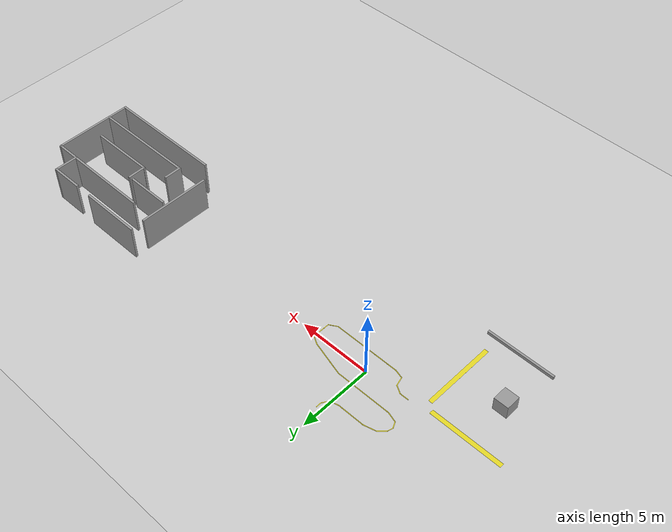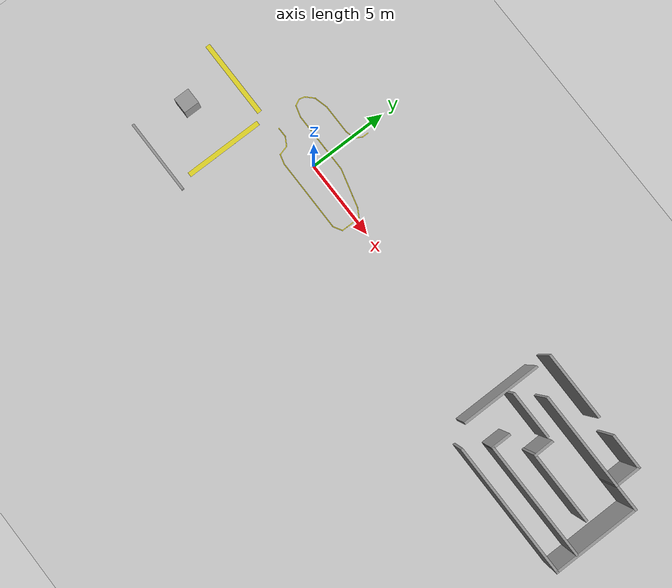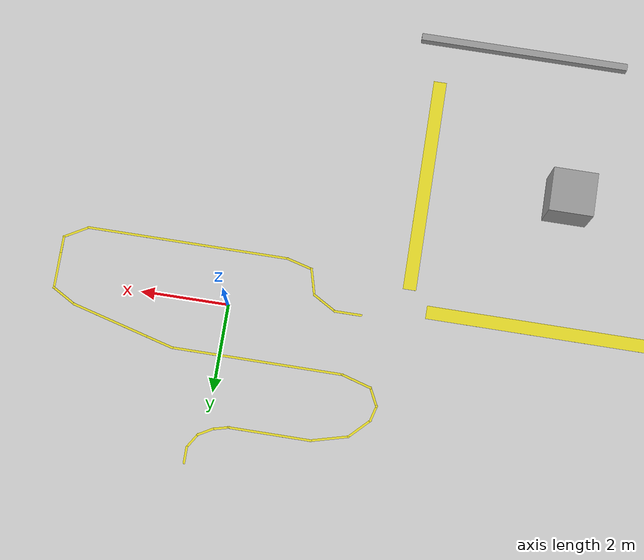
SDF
<sdf version="1.7">
 <world name="default">
  <light name="sun" type="directional">
   <pose>0 0 10 0 -0 0</pose>
   <diffuse>0.8 0.8 0.8 1</diffuse>
   <specular>0.2 0.2 0.2 1</specular>
   <attenuation>
    <range>1000</range>
    <constant>0.9</constant>
    <linear>0.01</linear>
    <quadratic>0.001</quadratic>
   </attenuation>
   <direction>-0.5 0.1 -0.9</direction>
   <spot><inner_angle>0</inner_angle><outer_angle>0</outer_angle><falloff>0</falloff></spot>
  </light>
  <include><uri>file:///home/giromi/model_editor_models/sideblock_path/model.sdf</uri></include>
  <model name="ground_plane">
   <static>1</static>
   <link name="link">
    <collision name="collision">
     <geometry><plane><normal>0 0 1</normal><size>100 100</size></plane></geometry>
     <surface>
      <contact><collide_bitmask>65535</collide_bitmask></contact>
      <friction><ode><mu>100</mu><mu2>50</mu2></ode></friction>
     </surface>
    </collision>
    <visual name="visual">
     <cast_shadows>0</cast_shadows>
     <geometry><plane><normal>0 0 1</normal><size>100 100</size></plane></geometry>
     <material>
      <script><uri>file://media/materials/scripts/gazebo.material</uri><name>Gazebo/Grey</name></script>
     </material>
    </visual>
   </link>
  </model>
  <gravity>0 0 -9.8</gravity>
  <magnetic_field>6e-06 2.3e-05 -4.2e-05</magnetic_field>
  <atmosphere type="adiabatic"/>
  <physics type="ode">
   <max_step_size>0.001</max_step_size>
   <real_time_factor>1</real_time_factor>
   <real_time_update_rate>1000</real_time_update_rate>
  </physics>
  <scene><ambient>0.4 0.4 0.4 1</ambient><background>0.7 0.7 0.7 1</background><shadows>1</shadows></scene>
  <spherical_coordinates>
   <surface_model>EARTH_WGS84</surface_model>
   <latitude_deg>0</latitude_deg>
   <longitude_deg>0</longitude_deg>
   <elevation>0</elevation>
   <heading_deg>0</heading_deg>
  </spherical_coordinates>
  <model name="maze">
   <pose>21 0 0 0 -0 0</pose>
   <link name="Wall_1">
    <collision name="Wall_1_Collision">
     <geometry><box><size>8.25 0.15 2.5</size></box></geometry>
     <pose>0 0 1.25 0 -0 0</pose>
    </collision>
    <visual name="Wall_1_Visual">
     <pose>0 0 1.25 0 -0 0</pose>
     <geometry><box><size>8.25 0.15 2.5</size></box></geometry>
     <material>
      <script><uri>file://media/materials/scripts/gazebo.material</uri><name>Gazebo/Grey</name></script>
      <ambient>1 1 1 1</ambient>
     </material>
     <meta><layer>0</layer></meta>
    </visual>
    <pose>0.515408 -3.4419 0 0 -0 0</pose>
   </link>
   <link name="Wall_2">
    <collision name="Wall_2_Collision">
     <geometry><box><size>5.5 0.15 2.5</size></box></geometry>
     <pose>0 0 1.25 0 -0 0</pose>
    </collision>
    <visual name="Wall_2_Visual">
     <pose>0 0 1.25 0 -0 0</pose>
     <geometry><box><size>5.5 0.15 2.5</size></box></geometry>
     <material>
      <script><uri>file://media/materials/scripts/gazebo.material</uri><name>Gazebo/Grey</name></script>
      <ambient>1 1 1 1</ambient>
     </material>
     <meta><layer>0</layer></meta>
    </visual>
    <pose>4.56541 -0.766899 0 0 -0 1.5708</pose>
   </link>
   <link name="Wall_3">
    <collision name="Wall_3_Collision">
     <geometry><box><size>1.75 0.15 2.5</size></box></geometry>
     <pose>0 0 1.25 0 -0 0</pose>
    </collision>
    <visual name="Wall_3_Visual">
     <pose>0 0 1.25 0 -0 0</pose>
     <geometry><box><size>1.75 0.15 2.5</size></box></geometry>
     <material>
      <script><uri>file://media/materials/scripts/gazebo.material</uri><name>Gazebo/Grey</name></script>
      <ambient>1 1 1 1</ambient>
     </material>
     <meta><layer>0</layer></meta>
    </visual>
    <pose>3.76541 1.9081 0 0 -0 3.14159</pose>
   </link>
   <link name="Wall_4">
    <collision name="Wall_4_Collision">
     <geometry><box><size>1.6825 0.15 2.5</size></box></geometry>
     <pose>0 0 1.25 0 -0 0</pose>
    </collision>
    <visual name="Wall_4_Visual">
     <pose>0 0 1.25 0 -0 0</pose>
     <geometry><box><size>1.6825 0.15 2.5</size></box></geometry>
     <material>
      <script><uri>file://media/materials/scripts/gazebo.material</uri><name>Gazebo/Grey</name></script>
      <ambient>1 1 1 1</ambient>
     </material>
     <meta><layer>0</layer></meta>
    </visual>
    <pose>2.96541 2.6743 0 0 -0 1.5708</pose>
   </link>
   <link name="Wall_5">
    <collision name="Wall_5_Collision">
     <geometry><box><size>2.25 0.15 2.5</size></box></geometry>
     <pose>0 0 1.25 0 -0 0</pose>
    </collision>
    <visual name="Wall_5_Visual">
     <pose>0 0 1.25 0 -0 0</pose>
     <geometry><box><size>2.25 0.15 2.5</size></box></geometry>
     <material>
      <script><uri>file://media/materials/scripts/gazebo.material</uri><name>Gazebo/Grey</name></script>
      <ambient>1 1 1 1</ambient>
     </material>
     <meta><layer>0</layer></meta>
    </visual>
    <pose>1.89851 3.44051 0 0 -0 3.14159</pose>
   </link>
   <link name="Wall_6">
    <collision name="Wall_6_Collision">
     <geometry><box><size>5 0.15 2.5</size></box></geometry>
     <pose>0 0 1.25 0 -0 0</pose>
    </collision>
    <visual name="Wall_6_Visual">
     <pose>0 0 1.25 0 -0 0</pose>
     <geometry><box><size>5 0.15 2.5</size></box></geometry>
     <material>
      <script><uri>file://media/materials/scripts/gazebo.material</uri><name>Gazebo/Grey</name></script>
      <ambient>1 1 1 1</ambient>
     </material>
     <meta><layer>0</layer></meta>
    </visual>
    <pose>-4.56541 0.016899 0 0 -0 1.5708</pose>
   </link>
   <link name="Wall_7">
    <collision name="Wall_7_Collision">
     <geometry><box><size>4.25 0.15 2.5</size></box></geometry>
     <pose>0 0 1.25 0 -0 0</pose>
    </collision>
    <visual name="Wall_7_Visual">
     <pose>0 0 1.25 0 -0 0</pose>
     <geometry><box><size>4.25 0.15 2.5</size></box></geometry>
     <material>
      <script><uri>file://media/materials/scripts/gazebo.material</uri><name>Gazebo/Grey</name></script>
      <ambient>1 1 1 1</ambient>
     </material>
     <meta><layer>0</layer></meta>
    </visual>
    <pose>-2.51541 3.4419 0 0 -0 0</pose>
   </link>
   <link name="Wall_8">
    <collision name="Wall_8_Collision">
     <geometry><box><size>6 0.15 2.5</size></box></geometry>
     <pose>0 0 1.25 0 -0 0</pose>
    </collision>
    <visual name="Wall_8_Visual">
     <pose>0 0 1.25 0 -0 0</pose>
     <geometry><box><size>6 0.15 2.5</size></box></geometry>
     <material>
      <script><uri>file://media/materials/scripts/gazebo.material</uri><name>Gazebo/Grey</name></script>
      <ambient>1 1 1 1</ambient>
     </material>
     <meta><layer>0</layer></meta>
    </visual>
    <pose>0.040408 1.9081 0 0 -0 3.14159</pose>
   </link>
   <link name="Wall_9">
    <collision name="Wall_9_Collision">
     <geometry><box><size>3.75 0.15 2.5</size></box></geometry>
     <pose>0 0 1.25 0 -0 0</pose>
    </collision>
    <visual name="Wall_9_Visual">
     <pose>0 0 1.25 0 -0 0</pose>
     <geometry><box><size>3 0.15 2.5</size></box></geometry>
     <material>
      <script><uri>file://media/materials/scripts/gazebo.material</uri><name>Gazebo/Grey</name></script>
      <ambient>1 1 1 1</ambient>
     </material>
     <meta><layer>0</layer></meta>
    </visual>
    <pose>-2.73161 0.613768 0 0 -0 0</pose>
   </link>
   <link name="Wall_10">
    <collision name="Wall_10_Collision">
     <geometry><box><size>1.28044 0.15 2.5</size></box></geometry>
     <pose>0 0 1.25 0 -0 0</pose>
    </collision>
    <visual name="Wall_10_Visual">
     <pose>0 0 1.25 0 -0 0</pose>
     <geometry><box><size>1.28044 0.15 2.5</size></box></geometry>
     <material>
      <script><uri>file://media/materials/scripts/gazebo.material</uri><name>Gazebo/Grey</name></script>
      <ambient>1 1 1 1</ambient>
     </material>
     <meta><layer>0</layer></meta>
    </visual>
    <pose>-0.94006 0.048609 0 0 -0 -1.55585</pose>
   </link>
   <link name="Wall_11">
    <collision name="Wall_11_Collision">
     <geometry><box><size>4.5 0.15 2.5</size></box></geometry>
     <pose>0 0 1.25 0 -0 0</pose>
    </collision>
    <visual name="Wall_11_Visual">
     <pose>0 0 1.25 0 -0 0</pose>
     <geometry><box><size>4.5 0.15 2.5</size></box></geometry>
     <material>
      <script><uri>file://media/materials/scripts/gazebo.material</uri><name>Gazebo/Grey</name></script>
      <ambient>1 1 1 1</ambient>
     </material>
     <meta><layer>0</layer></meta>
    </visual>
    <pose>1.22649 -0.533449 0 0 -0 0</pose>
   </link>
   <link name="Wall_12">
    <collision name="Wall_12_Collision">
     <geometry><box><size>7.23312 0.15 2.5</size></box></geometry>
     <pose>0 0 1.25 0 -0 0</pose>
    </collision>
    <visual name="Wall_12_Visual">
     <pose>0 0 1.25 0 -0 0</pose>
     <geometry><box><size>7.23312 0.15 2.5</size></box></geometry>
     <material>
      <script><uri>file://media/materials/scripts/gazebo.material</uri><name>Gazebo/Grey</name></script>
      <ambient>1 1 1 1</ambient>
     </material>
     <meta><layer>0</layer></meta>
    </visual>
    <pose>0.933799 -2.06466 0 0 -0 -3.13921</pose>
   </link>
   <link name="Wall_13">
    <collision name="Wall_13_Collision">
     <geometry><box><size>1.25 0.15 2.5</size></box></geometry>
     <pose>0 0 1.25 0 -0 0</pose>
    </collision>
    <visual name="Wall_13_Visual">
     <pose>0 0 1.25 0 -0 0</pose>
     <geometry><box><size>1.25 0.15 2.5</size></box></geometry>
     <material>
      <script><uri>file://media/materials/scripts/gazebo.material</uri><name>Gazebo/Grey</name></script>
      <ambient>1 1 1 1</ambient>
     </material>
     <meta><layer>0</layer></meta>
    </visual>
    <pose>-2.62465 -1.52311 0 0 -0 1.5708</pose>
   </link>
   <static>1</static>
  </model>
  <model name="unit_box">
   <pose>-5.78118 -6.80733 0.5 0 -0 0</pose>
   <link name="link">
    <inertial>
     <mass>1</mass>
     <inertia>
      <ixx>0.166667</ixx>
      <ixy>0</ixy>
      <ixz>0</ixz>
      <iyy>0.166667</iyy>
      <iyz>0</iyz>
      <izz>0.166667</izz>
     </inertia>
    </inertial>
    <collision name="collision"><geometry><box><size>4.74924 0.158335 0.219547</size></box></geometry></collision>
    <visual name="visual">
     <geometry><box><size>4.74924 0.158335 0.219547</size></box></geometry>
     <material>
      <script><name>Gazebo/Grey</name><uri>file://media/materials/scripts/gazebo.material</uri></script>
     </material>
    </visual>
   </link>
  </model>
  <model name="unit_box_0">
   <pose>-7.2443 -3.57609 0.5 0 -0 0</pose>
   <link name="link">
    <inertial>
     <mass>1</mass>
     <inertia>
      <ixx>0.166667</ixx>
      <ixy>0</ixy>
      <ixz>0</ixz>
      <iyy>0.166667</iyy>
      <iyz>0</iyz>
      <izz>0.166667</izz>
     </inertia>
    </inertial>
    <collision name="collision"><geometry><box><size>1 1 0.999998</size></box></geometry></collision>
    <visual name="visual">
     <geometry><box><size>1 1 0.999998</size></box></geometry>
     <material>
      <script><uri>file://media/materials/scripts/gazebo.material</uri><name>Gazebo/Grey</name></script>
     </material>
    </visual>
   </link>
  </model>
  <model name="unit_box_1">
   <pose>-2.67628 -7.72155 -0.439876 0 -0 0</pose>
   <link name="link">
    <collision name="collision">
     <geometry><plane><normal>0 0 1</normal><size>0.05 2.5</size></plane></geometry>
     <pose>0 0 0.0015 0 -0 0</pose>
     <surface><friction><ode><mu>100</mu><mu2>50</mu2></ode></friction></surface>
    </collision>
    <visual name="visual">
     <pose>0 0 0.0015 0 -0 0</pose>
     <geometry><box><size>0.981032 1.19911 0.001</size></box></geometry>
     <material>
      <script><uri>file://media/materials/scripts/gazebo.material</uri><name>Gazebo/Yellow</name></script>
     </material>
     <meta><layer>0</layer></meta>
    </visual>
    <pose>-3.96386 -8.42451 0 0 -0 -1.5708</pose>
   </link>
  </model>
 </world>
</sdf>

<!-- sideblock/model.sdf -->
<sdf version='1.7'>
  <model name='path'>
    <link name='Line_11'>
      <pose>-4 -6 0 0 0 -1.5708</pose>
      <self_collide>0</self_collide>
      <enable_wind>0</enable_wind>
      <kinematic>0</kinematic>
      <gravity>1</gravity>
      <inertial>
        <mass>1</mass>
        <pose>0 -0.04 0 0 -0 0</pose>
        <inertia>
          <ixx>1</ixx>
          <ixy>0</ixy>
          <ixz>0</ixz>
          <iyy>1</iyy>
          <iyz>0</iyz>
          <izz>1</izz>
        </inertia>
      </inertial>
      <visual name='Line_11_Visual'>
        <pose>-2.5 0 0 0 -0 0</pose>
        <geometry>
          <box>
            <size>5 0.3 0.001</size>
          </box>
        </geometry>
        <material>
          <script>
            <uri>file://media/materials/scripts/gazebo.material</uri>
            <name>Gazebo/Yellow</name>
          </script>
          <shader type='pixel'>
            <normal_map>__default__</normal_map>
          </shader>
          <ambient>1 1 0 1</ambient>
          <diffuse>1 1 0 1</diffuse>
          <emissive>0 0 0 1</emissive>
        </material>
        <meta>
          <layer>0</layer>
        </meta>
        <transparency>0</transparency>
        <cast_shadows>1</cast_shadows>
      </visual>
      <collision name='Line_11_Collision'>
        <laser_retro>0</laser_retro>
        <max_contacts>10</max_contacts>
        <pose>0 0 0.0015 0 -0 0</pose>
        <geometry>
          <box>
            <size>0.05 2.5 1</size>
          </box>
        </geometry>
        <surface>
          <friction>
            <ode>
              <mu>100</mu>
              <mu2>50</mu2>
              <fdir1>0 0 0</fdir1>
              <slip1>0</slip1>
              <slip2>0</slip2>
            </ode>
            <torsional>
              <coefficient>1</coefficient>
              <patch_radius>0</patch_radius>
              <surface_radius>0</surface_radius>
              <use_patch_radius>1</use_patch_radius>
              <ode>
                <slip>0</slip>
              </ode>
            </torsional>
          </friction>
          <bounce>
            <restitution_coefficient>0</restitution_coefficient>
            <threshold>1e+06</threshold>
          </bounce>
          <contact>
            <collide_without_contact>0</collide_without_contact>
            <collide_without_contact_bitmask>1</collide_without_contact_bitmask>
            <collide_bitmask>1</collide_bitmask>
            <ode>
              <soft_cfm>0</soft_cfm>
              <soft_erp>0.2</soft_erp>
              <kp>1e+13</kp>
              <kd>1</kd>
              <max_vel>0.01</max_vel>
              <min_depth>0</min_depth>
            </ode>
            <bullet>
              <split_impulse>1</split_impulse>
              <split_impulse_penetration_threshold>-0.01</split_impulse_penetration_threshold>
              <soft_cfm>0</soft_cfm>
              <soft_erp>0.2</soft_erp>
              <kp>1e+13</kp>
              <kd>1</kd>
            </bullet>
          </contact>
        </surface>
      </collision>
    </link>
    <link name='Line_13'>
      <pose>-4.45 -0.55 0 0 -0 0</pose>
      <self_collide>0</self_collide>
      <enable_wind>0</enable_wind>
      <kinematic>0</kinematic>
      <gravity>1</gravity>
      <inertial>
        <mass>1</mass>
        <pose>0 0 0 0 -0 0</pose>
        <inertia>
          <ixx>1</ixx>
          <ixy>0</ixy>
          <ixz>0</ixz>
          <iyy>1</iyy>
          <iyz>0</iyz>
          <izz>1</izz>
        </inertia>
      </inertial>
      <visual name='Line_13_Visual'>
        <pose>-2.5 0 0 0 -0 0</pose>
        <geometry>
          <box>
            <size>5 0.3 0.001</size>
          </box>
        </geometry>
        <material>
          <script>
            <uri>file://media/materials/scripts/gazebo.material</uri>
            <name>Gazebo/Yellow</name>
          </script>
          <shader type='pixel'>
            <normal_map>__default__</normal_map>
          </shader>
          <ambient>1 1 0 1</ambient>
          <diffuse>1 1 0 1</diffuse>
          <emissive>0 0 0 1</emissive>
        </material>
        <meta>
          <layer>0</layer>
        </meta>
        <transparency>0</transparency>
        <cast_shadows>1</cast_shadows>
      </visual>
      <collision name='Line_13_Collision'>
        <laser_retro>0</laser_retro>
        <max_contacts>10</max_contacts>
        <pose>0 0 0.0005 0 -0 0</pose>
        <geometry>
          <box>
            <size>0.05 1.40411 1</size>
          </box>
        </geometry>
        <surface>
          <friction>
            <ode>
              <mu>100</mu>
              <mu2>50</mu2>
              <fdir1>0 0 0</fdir1>
              <slip1>0</slip1>
              <slip2>0</slip2>
            </ode>
            <torsional>
              <coefficient>1</coefficient>
              <patch_radius>0</patch_radius>
              <surface_radius>0</surface_radius>
              <use_patch_radius>1</use_patch_radius>
              <ode>
                <slip>0</slip>
              </ode>
            </torsional>
          </friction>
          <bounce>
            <restitution_coefficient>0</restitution_coefficient>
            <threshold>1e+06</threshold>
          </bounce>
          <contact>
            <collide_without_contact>0</collide_without_contact>
            <collide_without_contact_bitmask>1</collide_without_contact_bitmask>
            <collide_bitmask>1</collide_bitmask>
            <ode>
              <soft_cfm>0</soft_cfm>
              <soft_erp>0.2</soft_erp>
              <kp>1e+13</kp>
              <kd>1</kd>
              <max_vel>0.01</max_vel>
              <min_depth>0</min_depth>
            </ode>
            <bullet>
              <split_impulse>1</split_impulse>
              <split_impulse_penetration_threshold>-0.01</split_impulse_penetration_threshold>
              <soft_cfm>0</soft_cfm>
              <soft_erp>0.2</soft_erp>
              <kp>1e+13</kp>
              <kd>1</kd>
            </bullet>
          </contact>
        </surface>
      </collision>
    </link>
    <link name='Line_14'>
      <pose>-2.70386 -0.244509 0 0 -0 0</pose>
      <self_collide>0</self_collide>
      <enable_wind>0</enable_wind>
      <kinematic>0</kinematic>
      <visual name='Line_14_Visual'>
        <pose>0 0 0.0005 0 -0 0</pose>
        <geometry>
          <box>
            <size>0.65 0.05 0.001</size>
          </box>
        </geometry>
        <material>
          <script>
            <uri>file://media/materials/scripts/gazebo.material</uri>
            <name>Gazebo/Yellow</name>
          </script>
          <shader type='pixel'/>
        </material>
        <meta>
          <layer>0</layer>
        </meta>
        <transparency>0</transparency>
        <cast_shadows>1</cast_shadows>
      </visual>
      <collision name='Line_14_Collision'>
        <laser_retro>0</laser_retro>
        <max_contacts>10</max_contacts>
        <pose>0 0 0.0005 0 -0 0</pose>
        <geometry>
          <box>
            <size>0.05 0.65 1</size>
          </box>
        </geometry>
        <surface>
          <friction>
            <ode>
              <mu>100</mu>
              <mu2>50</mu2>
              <fdir1>0 0 0</fdir1>
              <slip1>0</slip1>
              <slip2>0</slip2>
            </ode>
            <torsional>
              <coefficient>1</coefficient>
              <patch_radius>0</patch_radius>
              <surface_radius>0</surface_radius>
              <use_patch_radius>1</use_patch_radius>
              <ode>
                <slip>0</slip>
              </ode>
            </torsional>
          </friction>
          <bounce>
            <restitution_coefficient>0</restitution_coefficient>
            <threshold>1e+06</threshold>
          </bounce>
          <contact>
            <collide_without_contact>0</collide_without_contact>
            <collide_without_contact_bitmask>1</collide_without_contact_bitmask>
            <collide_bitmask>1</collide_bitmask>
            <ode>
              <soft_cfm>0</soft_cfm>
              <soft_erp>0.2</soft_erp>
              <kp>1e+13</kp>
              <kd>1</kd>
              <max_vel>0.01</max_vel>
              <min_depth>0</min_depth>
            </ode>
            <bullet>
              <split_impulse>1</split_impulse>
              <split_impulse_penetration_threshold>-0.01</split_impulse_penetration_threshold>
              <soft_cfm>0</soft_cfm>
              <soft_erp>0.2</soft_erp>
              <kp>1e+13</kp>
              <kd>1</kd>
            </bullet>
          </contact>
        </surface>
      </collision>
    </link>
    <link name='Line_20'>
      <pose>-2.14686 -0.394509 0 0 0 -0.528316</pose>
      <self_collide>0</self_collide>
      <enable_wind>0</enable_wind>
      <kinematic>0</kinematic>
      <visual name='Line_20_Visual'>
        <pose>0 0 0.0005 0 -0 0</pose>
        <geometry>
          <box>
            <size>0.645529 0.05 0.001</size>
          </box>
        </geometry>
        <material>
          <script>
            <uri>file://media/materials/scripts/gazebo.material</uri>
            <name>Gazebo/Yellow</name>
          </script>
          <shader type='pixel'/>
        </material>
        <meta>
          <layer>0</layer>
        </meta>
        <transparency>0</transparency>
        <cast_shadows>1</cast_shadows>
      </visual>
      <collision name='Line_20_Collision'>
        <laser_retro>0</laser_retro>
        <max_contacts>10</max_contacts>
        <pose>0 0 0.0005 0 -0 0</pose>
        <geometry>
          <box>
            <size>0.05 0.645529 1</size>
          </box>
        </geometry>
        <surface>
          <friction>
            <ode>
              <mu>100</mu>
              <mu2>50</mu2>
              <fdir1>0 0 0</fdir1>
              <slip1>0</slip1>
              <slip2>0</slip2>
            </ode>
            <torsional>
              <coefficient>1</coefficient>
              <patch_radius>0</patch_radius>
              <surface_radius>0</surface_radius>
              <use_patch_radius>1</use_patch_radius>
              <ode>
                <slip>0</slip>
              </ode>
            </torsional>
          </friction>
          <bounce>
            <restitution_coefficient>0</restitution_coefficient>
            <threshold>1e+06</threshold>
          </bounce>
          <contact>
            <collide_without_contact>0</collide_without_contact>
            <collide_without_contact_bitmask>1</collide_without_contact_bitmask>
            <collide_bitmask>1</collide_bitmask>
            <ode>
              <soft_cfm>0</soft_cfm>
              <soft_erp>0.2</soft_erp>
              <kp>1e+13</kp>
              <kd>1</kd>
              <max_vel>0.01</max_vel>
              <min_depth>0</min_depth>
            </ode>
            <bullet>
              <split_impulse>1</split_impulse>
              <split_impulse_penetration_threshold>-0.01</split_impulse_penetration_threshold>
              <soft_cfm>0</soft_cfm>
              <soft_erp>0.2</soft_erp>
              <kp>1e+13</kp>
              <kd>1</kd>
            </bullet>
          </contact>
        </surface>
      </collision>
    </link>
    <link name='Line_21'>
      <pose>-1.81186 -0.834509 0 0 0 -1.30805</pose>
      <self_collide>0</self_collide>
      <enable_wind>0</enable_wind>
      <kinematic>0</kinematic>
      <visual name='Line_21_Visual'>
        <pose>0 0 0.0005 0 -0 0</pose>
        <geometry>
          <box>
            <size>0.650446 0.05 0.001</size>
          </box>
        </geometry>
        <material>
          <script>
            <uri>file://media/materials/scripts/gazebo.material</uri>
            <name>Gazebo/Yellow</name>
          </script>
          <shader type='pixel'/>
        </material>
        <meta>
          <layer>0</layer>
        </meta>
        <transparency>0</transparency>
        <cast_shadows>1</cast_shadows>
      </visual>
      <collision name='Line_21_Collision'>
        <laser_retro>0</laser_retro>
        <max_contacts>10</max_contacts>
        <pose>0 0 0.0005 0 -0 0</pose>
        <geometry>
          <box>
            <size>0.05 0.650446 1</size>
          </box>
        </geometry>
        <surface>
          <friction>
            <ode>
              <mu>100</mu>
              <mu2>50</mu2>
              <fdir1>0 0 0</fdir1>
              <slip1>0</slip1>
              <slip2>0</slip2>
            </ode>
            <torsional>
              <coefficient>1</coefficient>
              <patch_radius>0</patch_radius>
              <surface_radius>0</surface_radius>
              <use_patch_radius>1</use_patch_radius>
              <ode>
                <slip>0</slip>
              </ode>
            </torsional>
          </friction>
          <bounce>
            <restitution_coefficient>0</restitution_coefficient>
            <threshold>1e+06</threshold>
          </bounce>
          <contact>
            <collide_without_contact>0</collide_without_contact>
            <collide_without_contact_bitmask>1</collide_without_contact_bitmask>
            <collide_bitmask>1</collide_bitmask>
            <ode>
              <soft_cfm>0</soft_cfm>
              <soft_erp>0.2</soft_erp>
              <kp>1e+13</kp>
              <kd>1</kd>
              <max_vel>0.01</max_vel>
              <min_depth>0</min_depth>
            </ode>
            <bullet>
              <split_impulse>1</split_impulse>
              <split_impulse_penetration_threshold>-0.01</split_impulse_penetration_threshold>
              <soft_cfm>0</soft_cfm>
              <soft_erp>0.2</soft_erp>
              <kp>1e+13</kp>
              <kd>1</kd>
            </bullet>
          </contact>
        </surface>
      </collision>
    </link>
    <link name='Line_22'>
      <pose>-1.44436 -1.20201 0 0 0 -0.26157</pose>
      <self_collide>0</self_collide>
      <enable_wind>0</enable_wind>
      <kinematic>0</kinematic>
      <visual name='Line_22_Visual'>
        <pose>0 0 0.0005 0 -0 0</pose>
        <geometry>
          <box>
            <size>0.649508 0.05 0.001</size>
          </box>
        </geometry>
        <material>
          <script>
            <uri>file://media/materials/scripts/gazebo.material</uri>
            <name>Gazebo/Yellow</name>
          </script>
          <shader type='pixel'/>
        </material>
        <meta>
          <layer>0</layer>
        </meta>
        <transparency>0</transparency>
        <cast_shadows>1</cast_shadows>
      </visual>
      <collision name='Line_22_Collision'>
        <laser_retro>0</laser_retro>
        <max_contacts>10</max_contacts>
        <pose>0 0 0.0005 0 -0 0</pose>
        <geometry>
          <box>
            <size>0.05 0.649508 1</size>
          </box>
        </geometry>
        <surface>
          <friction>
            <ode>
              <mu>100</mu>
              <mu2>50</mu2>
              <fdir1>0 0 0</fdir1>
              <slip1>0</slip1>
              <slip2>0</slip2>
            </ode>
            <torsional>
              <coefficient>1</coefficient>
              <patch_radius>0</patch_radius>
              <surface_radius>0</surface_radius>
              <use_patch_radius>1</use_patch_radius>
              <ode>
                <slip>0</slip>
              </ode>
            </torsional>
          </friction>
          <bounce>
            <restitution_coefficient>0</restitution_coefficient>
            <threshold>1e+06</threshold>
          </bounce>
          <contact>
            <collide_without_contact>0</collide_without_contact>
            <collide_without_contact_bitmask>1</collide_without_contact_bitmask>
            <collide_bitmask>1</collide_bitmask>
            <ode>
              <soft_cfm>0</soft_cfm>
              <soft_erp>0.2</soft_erp>
              <kp>1e+13</kp>
              <kd>1</kd>
              <max_vel>0.01</max_vel>
              <min_depth>0</min_depth>
            </ode>
            <bullet>
              <split_impulse>1</split_impulse>
              <split_impulse_penetration_threshold>-0.01</split_impulse_penetration_threshold>
              <soft_cfm>0</soft_cfm>
              <soft_erp>0.2</soft_erp>
              <kp>1e+13</kp>
              <kd>1</kd>
            </bullet>
          </contact>
        </surface>
      </collision>
    </link>
    <link name='Line_23'>
      <pose>1.14514 -1.27951 0 0 -0 0</pose>
      <self_collide>0</self_collide>
      <enable_wind>0</enable_wind>
      <kinematic>0</kinematic>
      <visual name='Line_23_Visual'>
        <pose>0 0 0.0005 0 -0 0</pose>
        <geometry>
          <box>
            <size>4.65006 0.05 0.001</size>
          </box>
        </geometry>
        <material>
          <script>
            <uri>file://media/materials/scripts/gazebo.material</uri>
            <name>Gazebo/Yellow</name>
          </script>
          <shader type='pixel'/>
        </material>
        <meta>
          <layer>0</layer>
        </meta>
        <transparency>0</transparency>
        <cast_shadows>1</cast_shadows>
      </visual>
      <collision name='Line_23_Collision'>
        <laser_retro>0</laser_retro>
        <max_contacts>10</max_contacts>
        <pose>0 0 0.0005 0 -0 0</pose>
        <geometry>
          <box>
            <size>0.05 4.65006 1</size>
          </box>
        </geometry>
        <surface>
          <friction>
            <ode>
              <mu>100</mu>
              <mu2>50</mu2>
              <fdir1>0 0 0</fdir1>
              <slip1>0</slip1>
              <slip2>0</slip2>
            </ode>
            <torsional>
              <coefficient>1</coefficient>
              <patch_radius>0</patch_radius>
              <surface_radius>0</surface_radius>
              <use_patch_radius>1</use_patch_radius>
              <ode>
                <slip>0</slip>
              </ode>
            </torsional>
          </friction>
          <bounce>
            <restitution_coefficient>0</restitution_coefficient>
            <threshold>1e+06</threshold>
          </bounce>
          <contact>
            <collide_without_contact>0</collide_without_contact>
            <collide_without_contact_bitmask>1</collide_without_contact_bitmask>
            <collide_bitmask>1</collide_bitmask>
            <ode>
              <soft_cfm>0</soft_cfm>
              <soft_erp>0.2</soft_erp>
              <kp>1e+13</kp>
              <kd>1</kd>
              <max_vel>0.01</max_vel>
              <min_depth>0</min_depth>
            </ode>
            <bullet>
              <split_impulse>1</split_impulse>
              <split_impulse_penetration_threshold>-0.01</split_impulse_penetration_threshold>
              <soft_cfm>0</soft_cfm>
              <soft_erp>0.2</soft_erp>
              <kp>1e+13</kp>
              <kd>1</kd>
            </bullet>
          </contact>
        </surface>
      </collision>
    </link>
    <link name='Line_24'>
      <pose>3.70514 -1.12951 0 0 -0 0.523278</pose>
      <self_collide>0</self_collide>
      <enable_wind>0</enable_wind>
      <kinematic>0</kinematic>
      <visual name='Line_24_Visual'>
        <pose>0 0 0.0005 0 -0 0</pose>
        <geometry>
          <box>
            <size>0.649922 0.05 0.001</size>
          </box>
        </geometry>
        <material>
          <script>
            <uri>file://media/materials/scripts/gazebo.material</uri>
            <name>Gazebo/Yellow</name>
          </script>
          <shader type='pixel'/>
        </material>
        <meta>
          <layer>0</layer>
        </meta>
        <transparency>0</transparency>
        <cast_shadows>1</cast_shadows>
      </visual>
      <collision name='Line_24_Collision'>
        <laser_retro>0</laser_retro>
        <max_contacts>10</max_contacts>
        <pose>0 0 0.0005 0 -0 0</pose>
        <geometry>
          <box>
            <size>0.05 0.649922 1</size>
          </box>
        </geometry>
        <surface>
          <friction>
            <ode>
              <mu>100</mu>
              <mu2>50</mu2>
              <fdir1>0 0 0</fdir1>
              <slip1>0</slip1>
              <slip2>0</slip2>
            </ode>
            <torsional>
              <coefficient>1</coefficient>
              <patch_radius>0</patch_radius>
              <surface_radius>0</surface_radius>
              <use_patch_radius>1</use_patch_radius>
              <ode>
                <slip>0</slip>
              </ode>
            </torsional>
          </friction>
          <bounce>
            <restitution_coefficient>0</restitution_coefficient>
            <threshold>1e+06</threshold>
          </bounce>
          <contact>
            <collide_without_contact>0</collide_without_contact>
            <collide_without_contact_bitmask>1</collide_without_contact_bitmask>
            <collide_bitmask>1</collide_bitmask>
            <ode>
              <soft_cfm>0</soft_cfm>
              <soft_erp>0.2</soft_erp>
              <kp>1e+13</kp>
              <kd>1</kd>
              <max_vel>0.01</max_vel>
              <min_depth>0</min_depth>
            </ode>
            <bullet>
              <split_impulse>1</split_impulse>
              <split_impulse_penetration_threshold>-0.01</split_impulse_penetration_threshold>
              <soft_cfm>0</soft_cfm>
              <soft_erp>0.2</soft_erp>
              <kp>1e+13</kp>
              <kd>1</kd>
            </bullet>
          </contact>
        </surface>
      </collision>
    </link>
    <link name='Line_25'>
      <pose>3.96514 -0.804509 0 0 -0 1.5708</pose>
      <self_collide>0</self_collide>
      <enable_wind>0</enable_wind>
      <kinematic>0</kinematic>
      <visual name='Line_25_Visual'>
        <pose>0 0 0.0005 0 -0 0</pose>
        <geometry>
          <box>
            <size>0.399747 0.05 0.001</size>
          </box>
        </geometry>
        <material>
          <script>
            <uri>file://media/materials/scripts/gazebo.material</uri>
            <name>Gazebo/Yellow</name>
          </script>
          <shader type='pixel'/>
        </material>
        <meta>
          <layer>0</layer>
        </meta>
        <transparency>0</transparency>
        <cast_shadows>1</cast_shadows>
      </visual>
      <collision name='Line_25_Collision'>
        <laser_retro>0</laser_retro>
        <max_contacts>10</max_contacts>
        <pose>0 0 0.0005 0 -0 0</pose>
        <geometry>
          <box>
            <size>0.05 0.399747 1</size>
          </box>
        </geometry>
        <surface>
          <friction>
            <ode>
              <mu>100</mu>
              <mu2>50</mu2>
              <fdir1>0 0 0</fdir1>
              <slip1>0</slip1>
              <slip2>0</slip2>
            </ode>
            <torsional>
              <coefficient>1</coefficient>
              <patch_radius>0</patch_radius>
              <surface_radius>0</surface_radius>
              <use_patch_radius>1</use_patch_radius>
              <ode>
                <slip>0</slip>
              </ode>
            </torsional>
          </friction>
          <bounce>
            <restitution_coefficient>0</restitution_coefficient>
            <threshold>1e+06</threshold>
          </bounce>
          <contact>
            <collide_without_contact>0</collide_without_contact>
            <collide_without_contact_bitmask>1</collide_without_contact_bitmask>
            <collide_bitmask>1</collide_bitmask>
            <ode>
              <soft_cfm>0</soft_cfm>
              <soft_erp>0.2</soft_erp>
              <kp>1e+13</kp>
              <kd>1</kd>
              <max_vel>0.01</max_vel>
              <min_depth>0</min_depth>
            </ode>
            <bullet>
              <split_impulse>1</split_impulse>
              <split_impulse_penetration_threshold>-0.01</split_impulse_penetration_threshold>
              <soft_cfm>0</soft_cfm>
              <soft_erp>0.2</soft_erp>
              <kp>1e+13</kp>
              <kd>1</kd>
            </bullet>
          </contact>
        </surface>
      </collision>
    </link>
    <link name='Line_26'>
      <pose>3.96514 -0.204509 0 0 -0 1.5708</pose>
      <self_collide>0</self_collide>
      <enable_wind>0</enable_wind>
      <kinematic>0</kinematic>
      <visual name='Line_26_Visual'>
        <pose>0 0 0.0005 0 -0 0</pose>
        <geometry>
          <box>
            <size>0.899747 0.05 0.001</size>
          </box>
        </geometry>
        <material>
          <script>
            <uri>file://media/materials/scripts/gazebo.material</uri>
            <name>Gazebo/Yellow</name>
          </script>
          <shader type='pixel'/>
        </material>
        <meta>
          <layer>0</layer>
        </meta>
        <transparency>0</transparency>
        <cast_shadows>1</cast_shadows>
      </visual>
      <collision name='Line_26_Collision'>
        <laser_retro>0</laser_retro>
        <max_contacts>10</max_contacts>
        <pose>0 0 0.0005 0 -0 0</pose>
        <geometry>
          <box>
            <size>0.05 0.899747 1</size>
          </box>
        </geometry>
        <surface>
          <friction>
            <ode>
              <mu>100</mu>
              <mu2>50</mu2>
              <fdir1>0 0 0</fdir1>
              <slip1>0</slip1>
              <slip2>0</slip2>
            </ode>
            <torsional>
              <coefficient>1</coefficient>
              <patch_radius>0</patch_radius>
              <surface_radius>0</surface_radius>
              <use_patch_radius>1</use_patch_radius>
              <ode>
                <slip>0</slip>
              </ode>
            </torsional>
          </friction>
          <bounce>
            <restitution_coefficient>0</restitution_coefficient>
            <threshold>1e+06</threshold>
          </bounce>
          <contact>
            <collide_without_contact>0</collide_without_contact>
            <collide_without_contact_bitmask>1</collide_without_contact_bitmask>
            <collide_bitmask>1</collide_bitmask>
            <ode>
              <soft_cfm>0</soft_cfm>
              <soft_erp>0.2</soft_erp>
              <kp>1e+13</kp>
              <kd>1</kd>
              <max_vel>0.01</max_vel>
              <min_depth>0</min_depth>
            </ode>
            <bullet>
              <split_impulse>1</split_impulse>
              <split_impulse_penetration_threshold>-0.01</split_impulse_penetration_threshold>
              <soft_cfm>0</soft_cfm>
              <soft_erp>0.2</soft_erp>
              <kp>1e+13</kp>
              <kd>1</kd>
            </bullet>
          </contact>
        </surface>
      </collision>
    </link>
    <link name='Line_27'>
      <pose>3.70514 0.370491 0 0 -0 2.61831</pose>
      <self_collide>0</self_collide>
      <enable_wind>0</enable_wind>
      <kinematic>0</kinematic>
      <visual name='Line_27_Visual'>
        <pose>0 0 0.0005 0 -0 0</pose>
        <geometry>
          <box>
            <size>0.650158 0.05 0.001</size>
          </box>
        </geometry>
        <material>
          <script>
            <uri>file://media/materials/scripts/gazebo.material</uri>
            <name>Gazebo/Yellow</name>
          </script>
          <shader type='pixel'/>
        </material>
        <meta>
          <layer>0</layer>
        </meta>
        <transparency>0</transparency>
        <cast_shadows>1</cast_shadows>
      </visual>
      <collision name='Line_27_Collision'>
        <laser_retro>0</laser_retro>
        <max_contacts>10</max_contacts>
        <pose>0 0 0.0005 0 -0 0</pose>
        <geometry>
          <box>
            <size>0.05 0.650158 1</size>
          </box>
        </geometry>
        <surface>
          <friction>
            <ode>
              <mu>100</mu>
              <mu2>50</mu2>
              <fdir1>0 0 0</fdir1>
              <slip1>0</slip1>
              <slip2>0</slip2>
            </ode>
            <torsional>
              <coefficient>1</coefficient>
              <patch_radius>0</patch_radius>
              <surface_radius>0</surface_radius>
              <use_patch_radius>1</use_patch_radius>
              <ode>
                <slip>0</slip>
              </ode>
            </torsional>
          </friction>
          <bounce>
            <restitution_coefficient>0</restitution_coefficient>
            <threshold>1e+06</threshold>
          </bounce>
          <contact>
            <collide_without_contact>0</collide_without_contact>
            <collide_without_contact_bitmask>1</collide_without_contact_bitmask>
            <collide_bitmask>1</collide_bitmask>
            <ode>
              <soft_cfm>0</soft_cfm>
              <soft_erp>0.2</soft_erp>
              <kp>1e+13</kp>
              <kd>1</kd>
              <max_vel>0.01</max_vel>
              <min_depth>0</min_depth>
            </ode>
            <bullet>
              <split_impulse>1</split_impulse>
              <split_impulse_penetration_threshold>-0.01</split_impulse_penetration_threshold>
              <soft_cfm>0</soft_cfm>
              <soft_erp>0.2</soft_erp>
              <kp>1e+13</kp>
              <kd>1</kd>
            </bullet>
          </contact>
        </surface>
      </collision>
    </link>
    <link name='Line_28'>
      <pose>2.55164 0.759991 0 0 -0 2.8797</pose>
      <self_collide>0</self_collide>
      <enable_wind>0</enable_wind>
      <kinematic>0</kinematic>
      <visual name='Line_28_Visual'>
        <pose>0 0 0.0005 0 -0 0</pose>
        <geometry>
          <box>
            <size>1.89988 0.05 0.001</size>
          </box>
        </geometry>
        <material>
          <script>
            <uri>file://media/materials/scripts/gazebo.material</uri>
            <name>Gazebo/Yellow</name>
          </script>
          <shader type='pixel'/>
        </material>
        <meta>
          <layer>0</layer>
        </meta>
        <transparency>0</transparency>
        <cast_shadows>1</cast_shadows>
      </visual>
      <collision name='Line_28_Collision'>
        <laser_retro>0</laser_retro>
        <max_contacts>10</max_contacts>
        <pose>0 0 0.0005 0 -0 0</pose>
        <geometry>
          <box>
            <size>0.05 1.89988 1</size>
          </box>
        </geometry>
        <surface>
          <friction>
            <ode>
              <mu>100</mu>
              <mu2>50</mu2>
              <fdir1>0 0 0</fdir1>
              <slip1>0</slip1>
              <slip2>0</slip2>
            </ode>
            <torsional>
              <coefficient>1</coefficient>
              <patch_radius>0</patch_radius>
              <surface_radius>0</surface_radius>
              <use_patch_radius>1</use_patch_radius>
              <ode>
                <slip>0</slip>
              </ode>
            </torsional>
          </friction>
          <bounce>
            <restitution_coefficient>0</restitution_coefficient>
            <threshold>1e+06</threshold>
          </bounce>
          <contact>
            <collide_without_contact>0</collide_without_contact>
            <collide_without_contact_bitmask>1</collide_without_contact_bitmask>
            <collide_bitmask>1</collide_bitmask>
            <ode>
              <soft_cfm>0</soft_cfm>
              <soft_erp>0.2</soft_erp>
              <kp>1e+13</kp>
              <kd>1</kd>
              <max_vel>0.01</max_vel>
              <min_depth>0</min_depth>
            </ode>
            <bullet>
              <split_impulse>1</split_impulse>
              <split_impulse_penetration_threshold>-0.01</split_impulse_penetration_threshold>
              <soft_cfm>0</soft_cfm>
              <soft_erp>0.2</soft_erp>
              <kp>1e+13</kp>
              <kd>1</kd>
            </bullet>
          </contact>
        </surface>
      </collision>
    </link>
    <link name='Line_29'>
      <pose>1.36864 1.07699 0 0 -0 2.88002</pose>
      <self_collide>0</self_collide>
      <enable_wind>0</enable_wind>
      <kinematic>0</kinematic>
      <visual name='Line_29_Visual'>
        <pose>0 0 0.0005 0 -0 0</pose>
        <geometry>
          <box>
            <size>0.649797 0.05 0.001</size>
          </box>
        </geometry>
        <material>
          <script>
            <uri>file://media/materials/scripts/gazebo.material</uri>
            <name>Gazebo/Yellow</name>
          </script>
          <shader type='pixel'/>
        </material>
        <meta>
          <layer>0</layer>
        </meta>
        <transparency>0</transparency>
        <cast_shadows>1</cast_shadows>
      </visual>
      <collision name='Line_29_Collision'>
        <laser_retro>0</laser_retro>
        <max_contacts>10</max_contacts>
        <pose>0 0 0.0005 0 -0 0</pose>
        <geometry>
          <box>
            <size>0.05 0.649797 1</size>
          </box>
        </geometry>
        <surface>
          <friction>
            <ode>
              <mu>100</mu>
              <mu2>50</mu2>
              <fdir1>0 0 0</fdir1>
              <slip1>0</slip1>
              <slip2>0</slip2>
            </ode>
            <torsional>
              <coefficient>1</coefficient>
              <patch_radius>0</patch_radius>
              <surface_radius>0</surface_radius>
              <use_patch_radius>1</use_patch_radius>
              <ode>
                <slip>0</slip>
              </ode>
            </torsional>
          </friction>
          <bounce>
            <restitution_coefficient>0</restitution_coefficient>
            <threshold>1e+06</threshold>
          </bounce>
          <contact>
            <collide_without_contact>0</collide_without_contact>
            <collide_without_contact_bitmask>1</collide_without_contact_bitmask>
            <collide_bitmask>1</collide_bitmask>
            <ode>
              <soft_cfm>0</soft_cfm>
              <soft_erp>0.2</soft_erp>
              <kp>1e+13</kp>
              <kd>1</kd>
              <max_vel>0.01</max_vel>
              <min_depth>0</min_depth>
            </ode>
            <bullet>
              <split_impulse>1</split_impulse>
              <split_impulse_penetration_threshold>-0.01</split_impulse_penetration_threshold>
              <soft_cfm>0</soft_cfm>
              <soft_erp>0.2</soft_erp>
              <kp>1e+13</kp>
              <kd>1</kd>
            </bullet>
          </contact>
        </surface>
      </collision>
    </link>
    <link name='Line_30'>
      <pose>-0.855858 1.15449 0 0 -0 3.14159</pose>
      <self_collide>0</self_collide>
      <enable_wind>0</enable_wind>
      <kinematic>0</kinematic>
      <visual name='Line_30_Visual'>
        <pose>0 0 0.0005 0 -0 0</pose>
        <geometry>
          <box>
            <size>3.92046 0.05 0.001</size>
          </box>
        </geometry>
        <material>
          <script>
            <uri>file://media/materials/scripts/gazebo.material</uri>
            <name>Gazebo/Yellow</name>
          </script>
          <shader type='pixel'/>
        </material>
        <meta>
          <layer>0</layer>
        </meta>
        <transparency>0</transparency>
        <cast_shadows>1</cast_shadows>
      </visual>
      <collision name='Line_30_Collision'>
        <laser_retro>0</laser_retro>
        <max_contacts>10</max_contacts>
        <pose>0 0 0.0005 0 -0 0</pose>
        <geometry>
          <box>
            <size>0.05 3.92046 1</size>
          </box>
        </geometry>
        <surface>
          <friction>
            <ode>
              <mu>100</mu>
              <mu2>50</mu2>
              <fdir1>0 0 0</fdir1>
              <slip1>0</slip1>
              <slip2>0</slip2>
            </ode>
            <torsional>
              <coefficient>1</coefficient>
              <patch_radius>0</patch_radius>
              <surface_radius>0</surface_radius>
              <use_patch_radius>1</use_patch_radius>
              <ode>
                <slip>0</slip>
              </ode>
            </torsional>
          </friction>
          <bounce>
            <restitution_coefficient>0</restitution_coefficient>
            <threshold>1e+06</threshold>
          </bounce>
          <contact>
            <collide_without_contact>0</collide_without_contact>
            <collide_without_contact_bitmask>1</collide_without_contact_bitmask>
            <collide_bitmask>1</collide_bitmask>
            <ode>
              <soft_cfm>0</soft_cfm>
              <soft_erp>0.2</soft_erp>
              <kp>1e+13</kp>
              <kd>1</kd>
              <max_vel>0.01</max_vel>
              <min_depth>0</min_depth>
            </ode>
            <bullet>
              <split_impulse>1</split_impulse>
              <split_impulse_penetration_threshold>-0.01</split_impulse_penetration_threshold>
              <soft_cfm>0</soft_cfm>
              <soft_erp>0.2</soft_erp>
              <kp>1e+13</kp>
              <kd>1</kd>
            </bullet>
          </contact>
        </surface>
      </collision>
    </link>
    <link name='Line_31'>
      <pose>-3.12586 1.25199 0 0 -0 2.85837</pose>
      <self_collide>0</self_collide>
      <enable_wind>0</enable_wind>
      <kinematic>0</kinematic>
      <visual name='Line_31_Visual'>
        <pose>0 0 0.0005 0 -0 0</pose>
        <geometry>
          <box>
            <size>0.747857 0.05 0.001</size>
          </box>
        </geometry>
        <material>
          <script>
            <uri>file://media/materials/scripts/gazebo.material</uri>
            <name>Gazebo/Yellow</name>
          </script>
          <shader type='pixel'/>
        </material>
        <meta>
          <layer>0</layer>
        </meta>
        <transparency>0</transparency>
        <cast_shadows>1</cast_shadows>
      </visual>
      <collision name='Line_31_Collision'>
        <laser_retro>0</laser_retro>
        <max_contacts>10</max_contacts>
        <pose>0 0 0.0005 0 -0 0</pose>
        <geometry>
          <box>
            <size>0.05 0.747857 1</size>
          </box>
        </geometry>
        <surface>
          <friction>
            <ode>
              <mu>100</mu>
              <mu2>50</mu2>
              <fdir1>0 0 0</fdir1>
              <slip1>0</slip1>
              <slip2>0</slip2>
            </ode>
            <torsional>
              <coefficient>1</coefficient>
              <patch_radius>0</patch_radius>
              <surface_radius>0</surface_radius>
              <use_patch_radius>1</use_patch_radius>
              <ode>
                <slip>0</slip>
              </ode>
            </torsional>
          </friction>
          <bounce>
            <restitution_coefficient>0</restitution_coefficient>
            <threshold>1e+06</threshold>
          </bounce>
          <contact>
            <collide_without_contact>0</collide_without_contact>
            <collide_without_contact_bitmask>1</collide_without_contact_bitmask>
            <collide_bitmask>1</collide_bitmask>
            <ode>
              <soft_cfm>0</soft_cfm>
              <soft_erp>0.2</soft_erp>
              <kp>1e+13</kp>
              <kd>1</kd>
              <max_vel>0.01</max_vel>
              <min_depth>0</min_depth>
            </ode>
            <bullet>
              <split_impulse>1</split_impulse>
              <split_impulse_penetration_threshold>-0.01</split_impulse_penetration_threshold>
              <soft_cfm>0</soft_cfm>
              <soft_erp>0.2</soft_erp>
              <kp>1e+13</kp>
              <kd>1</kd>
            </bullet>
          </contact>
        </surface>
      </collision>
    </link>
    <link name='Line_32'>
      <pose>-3.55986 1.54549 0 0 -0 2.03852</pose>
      <self_collide>0</self_collide>
      <enable_wind>0</enable_wind>
      <kinematic>0</kinematic>
      <visual name='Line_32_Visual'>
        <pose>0 0 0.0005 0 -0 0</pose>
        <geometry>
          <box>
            <size>0.489276 0.05 0.001</size>
          </box>
        </geometry>
        <material>
          <script>
            <uri>file://media/materials/scripts/gazebo.material</uri>
            <name>Gazebo/Yellow</name>
          </script>
          <shader type='pixel'/>
        </material>
        <meta>
          <layer>0</layer>
        </meta>
        <transparency>0</transparency>
        <cast_shadows>1</cast_shadows>
      </visual>
      <collision name='Line_32_Collision'>
        <laser_retro>0</laser_retro>
        <max_contacts>10</max_contacts>
        <pose>0 0 0.0005 0 -0 0</pose>
        <geometry>
          <box>
            <size>0.05 0.489276 1</size>
          </box>
        </geometry>
        <surface>
          <friction>
            <ode>
              <mu>100</mu>
              <mu2>50</mu2>
              <fdir1>0 0 0</fdir1>
              <slip1>0</slip1>
              <slip2>0</slip2>
            </ode>
            <torsional>
              <coefficient>1</coefficient>
              <patch_radius>0</patch_radius>
              <surface_radius>0</surface_radius>
              <use_patch_radius>1</use_patch_radius>
              <ode>
                <slip>0</slip>
              </ode>
            </torsional>
          </friction>
          <bounce>
            <restitution_coefficient>0</restitution_coefficient>
            <threshold>1e+06</threshold>
          </bounce>
          <contact>
            <collide_without_contact>0</collide_without_contact>
            <collide_without_contact_bitmask>1</collide_without_contact_bitmask>
            <collide_bitmask>1</collide_bitmask>
            <ode>
              <soft_cfm>0</soft_cfm>
              <soft_erp>0.2</soft_erp>
              <kp>1e+13</kp>
              <kd>1</kd>
              <max_vel>0.01</max_vel>
              <min_depth>0</min_depth>
            </ode>
            <bullet>
              <split_impulse>1</split_impulse>
              <split_impulse_penetration_threshold>-0.01</split_impulse_penetration_threshold>
              <soft_cfm>0</soft_cfm>
              <soft_erp>0.2</soft_erp>
              <kp>1e+13</kp>
              <kd>1</kd>
            </bullet>
          </contact>
        </surface>
      </collision>
    </link>
    <link name='Line_35'>
      <pose>-3.61336 1.91049 0 0 -0 1.3078</pose>
      <self_collide>0</self_collide>
      <enable_wind>0</enable_wind>
      <kinematic>0</kinematic>
      <visual name='Line_35_Visual'>
        <pose>0 0 0.0005 0 -0 0</pose>
        <geometry>
          <box>
            <size>0.400442 0.05 0.001</size>
          </box>
        </geometry>
        <material>
          <script>
            <uri>file://media/materials/scripts/gazebo.material</uri>
            <name>Gazebo/Yellow</name>
          </script>
          <shader type='pixel'/>
        </material>
        <meta>
          <layer>0</layer>
        </meta>
        <transparency>0</transparency>
        <cast_shadows>1</cast_shadows>
      </visual>
      <collision name='Line_35_Collision'>
        <laser_retro>0</laser_retro>
        <max_contacts>10</max_contacts>
        <pose>0 0 0.0005 0 -0 0</pose>
        <geometry>
          <box>
            <size>0.05 0.400442 1</size>
          </box>
        </geometry>
        <surface>
          <friction>
            <ode>
              <mu>100</mu>
              <mu2>50</mu2>
              <fdir1>0 0 0</fdir1>
              <slip1>0</slip1>
              <slip2>0</slip2>
            </ode>
            <torsional>
              <coefficient>1</coefficient>
              <patch_radius>0</patch_radius>
              <surface_radius>0</surface_radius>
              <use_patch_radius>1</use_patch_radius>
              <ode>
                <slip>0</slip>
              </ode>
            </torsional>
          </friction>
          <bounce>
            <restitution_coefficient>0</restitution_coefficient>
            <threshold>1e+06</threshold>
          </bounce>
          <contact>
            <collide_without_contact>0</collide_without_contact>
            <collide_without_contact_bitmask>1</collide_without_contact_bitmask>
            <collide_bitmask>1</collide_bitmask>
            <ode>
              <soft_cfm>0</soft_cfm>
              <soft_erp>0.2</soft_erp>
              <kp>1e+13</kp>
              <kd>1</kd>
              <max_vel>0.01</max_vel>
              <min_depth>0</min_depth>
            </ode>
            <bullet>
              <split_impulse>1</split_impulse>
              <split_impulse_penetration_threshold>-0.01</split_impulse_penetration_threshold>
              <soft_cfm>0</soft_cfm>
              <soft_erp>0.2</soft_erp>
              <kp>1e+13</kp>
              <kd>1</kd>
            </bullet>
          </contact>
        </surface>
      </collision>
    </link>
    <link name='Line_36'>
      <pose>-3.35586 2.29199 0 0 -0 0.786576</pose>
      <self_collide>0</self_collide>
      <enable_wind>0</enable_wind>
      <kinematic>0</kinematic>
      <visual name='Line_36_Visual'>
        <pose>0 0 0.0005 0 -0 0</pose>
        <geometry>
          <box>
            <size>0.650309 0.05 0.001</size>
          </box>
        </geometry>
        <material>
          <script>
            <uri>file://media/materials/scripts/gazebo.material</uri>
            <name>Gazebo/Yellow</name>
          </script>
          <shader type='pixel'/>
        </material>
        <meta>
          <layer>0</layer>
        </meta>
        <transparency>0</transparency>
        <cast_shadows>1</cast_shadows>
      </visual>
      <collision name='Line_36_Collision'>
        <laser_retro>0</laser_retro>
        <max_contacts>10</max_contacts>
        <pose>0 0 0.0005 0 -0 0</pose>
        <geometry>
          <box>
            <size>0.05 0.650309 1</size>
          </box>
        </geometry>
        <surface>
          <friction>
            <ode>
              <mu>100</mu>
              <mu2>50</mu2>
              <fdir1>0 0 0</fdir1>
              <slip1>0</slip1>
              <slip2>0</slip2>
            </ode>
            <torsional>
              <coefficient>1</coefficient>
              <patch_radius>0</patch_radius>
              <surface_radius>0</surface_radius>
              <use_patch_radius>1</use_patch_radius>
              <ode>
                <slip>0</slip>
              </ode>
            </torsional>
          </friction>
          <bounce>
            <restitution_coefficient>0</restitution_coefficient>
            <threshold>1e+06</threshold>
          </bounce>
          <contact>
            <collide_without_contact>0</collide_without_contact>
            <collide_without_contact_bitmask>1</collide_without_contact_bitmask>
            <collide_bitmask>1</collide_bitmask>
            <ode>
              <soft_cfm>0</soft_cfm>
              <soft_erp>0.2</soft_erp>
              <kp>1e+13</kp>
              <kd>1</kd>
              <max_vel>0.01</max_vel>
              <min_depth>0</min_depth>
            </ode>
            <bullet>
              <split_impulse>1</split_impulse>
              <split_impulse_penetration_threshold>-0.01</split_impulse_penetration_threshold>
              <soft_cfm>0</soft_cfm>
              <soft_erp>0.2</soft_erp>
              <kp>1e+13</kp>
              <kd>1</kd>
            </bullet>
          </contact>
        </surface>
      </collision>
    </link>
    <link name='Line_37'>
      <pose>-2.73336 2.61449 0 0 -0 0.261815</pose>
      <self_collide>0</self_collide>
      <enable_wind>0</enable_wind>
      <kinematic>0</kinematic>
      <visual name='Line_37_Visual'>
        <pose>0 0 0.0005 0 -0 0</pose>
        <geometry>
          <box>
            <size>0.900194 0.05 0.001</size>
          </box>
        </geometry>
        <material>
          <script>
            <uri>file://media/materials/scripts/gazebo.material</uri>
            <name>Gazebo/Yellow</name>
          </script>
          <shader type='pixel'/>
        </material>
        <meta>
          <layer>0</layer>
        </meta>
        <transparency>0</transparency>
        <cast_shadows>1</cast_shadows>
      </visual>
      <collision name='Line_37_Collision'>
        <laser_retro>0</laser_retro>
        <max_contacts>10</max_contacts>
        <pose>0 0 0.0005 0 -0 0</pose>
        <geometry>
          <box>
            <size>0.05 0.900194 1</size>
          </box>
        </geometry>
        <surface>
          <friction>
            <ode>
              <mu>100</mu>
              <mu2>50</mu2>
              <fdir1>0 0 0</fdir1>
              <slip1>0</slip1>
              <slip2>0</slip2>
            </ode>
            <torsional>
              <coefficient>1</coefficient>
              <patch_radius>0</patch_radius>
              <surface_radius>0</surface_radius>
              <use_patch_radius>1</use_patch_radius>
              <ode>
                <slip>0</slip>
              </ode>
            </torsional>
          </friction>
          <bounce>
            <restitution_coefficient>0</restitution_coefficient>
            <threshold>1e+06</threshold>
          </bounce>
          <contact>
            <collide_without_contact>0</collide_without_contact>
            <collide_without_contact_bitmask>1</collide_without_contact_bitmask>
            <collide_bitmask>1</collide_bitmask>
            <ode>
              <soft_cfm>0</soft_cfm>
              <soft_erp>0.2</soft_erp>
              <kp>1e+13</kp>
              <kd>1</kd>
              <max_vel>0.01</max_vel>
              <min_depth>0</min_depth>
            </ode>
            <bullet>
              <split_impulse>1</split_impulse>
              <split_impulse_penetration_threshold>-0.01</split_impulse_penetration_threshold>
              <soft_cfm>0</soft_cfm>
              <soft_erp>0.2</soft_erp>
              <kp>1e+13</kp>
              <kd>1</kd>
            </bullet>
          </contact>
        </surface>
      </collision>
    </link>
    <link name='Line_38'>
      <pose>-1.39786 2.72449 0 0 -0 0</pose>
      <self_collide>0</self_collide>
      <enable_wind>0</enable_wind>
      <kinematic>0</kinematic>
      <visual name='Line_38_Visual'>
        <pose>0 0 0.0005 0 -0 0</pose>
        <geometry>
          <box>
            <size>1.90032 0.05 0.001</size>
          </box>
        </geometry>
        <material>
          <script>
            <uri>file://media/materials/scripts/gazebo.material</uri>
            <name>Gazebo/Yellow</name>
          </script>
          <shader type='pixel'/>
        </material>
        <meta>
          <layer>0</layer>
        </meta>
        <transparency>0</transparency>
        <cast_shadows>1</cast_shadows>
      </visual>
      <collision name='Line_38_Collision'>
        <laser_retro>0</laser_retro>
        <max_contacts>10</max_contacts>
        <pose>0 0 0.0005 0 -0 0</pose>
        <geometry>
          <box>
            <size>0.05 1.90032 1</size>
          </box>
        </geometry>
        <surface>
          <friction>
            <ode>
              <mu>100</mu>
              <mu2>50</mu2>
              <fdir1>0 0 0</fdir1>
              <slip1>0</slip1>
              <slip2>0</slip2>
            </ode>
            <torsional>
              <coefficient>1</coefficient>
              <patch_radius>0</patch_radius>
              <surface_radius>0</surface_radius>
              <use_patch_radius>1</use_patch_radius>
              <ode>
                <slip>0</slip>
              </ode>
            </torsional>
          </friction>
          <bounce>
            <restitution_coefficient>0</restitution_coefficient>
            <threshold>1e+06</threshold>
          </bounce>
          <contact>
            <collide_without_contact>0</collide_without_contact>
            <collide_without_contact_bitmask>1</collide_without_contact_bitmask>
            <collide_bitmask>1</collide_bitmask>
            <ode>
              <soft_cfm>0</soft_cfm>
              <soft_erp>0.2</soft_erp>
              <kp>1e+13</kp>
              <kd>1</kd>
              <max_vel>0.01</max_vel>
              <min_depth>0</min_depth>
            </ode>
            <bullet>
              <split_impulse>1</split_impulse>
              <split_impulse_penetration_threshold>-0.01</split_impulse_penetration_threshold>
              <soft_cfm>0</soft_cfm>
              <soft_erp>0.2</soft_erp>
              <kp>1e+13</kp>
              <kd>1</kd>
            </bullet>
          </contact>
        </surface>
      </collision>
    </link>
    <link name='Line_39'>
      <pose>-0.303858 2.76949 0 0 -0 0.260234</pose>
      <self_collide>0</self_collide>
      <enable_wind>0</enable_wind>
      <kinematic>0</kinematic>
      <visual name='Line_39_Visual'>
        <pose>0 0 0.0005 0 -0 0</pose>
        <geometry>
          <box>
            <size>0.400228 0.05 0.001</size>
          </box>
        </geometry>
        <material>
          <script>
            <uri>file://media/materials/scripts/gazebo.material</uri>
            <name>Gazebo/Yellow</name>
          </script>
          <shader type='pixel'/>
        </material>
        <meta>
          <layer>0</layer>
        </meta>
        <transparency>0</transparency>
        <cast_shadows>1</cast_shadows>
      </visual>
      <collision name='Line_39_Collision'>
        <laser_retro>0</laser_retro>
        <max_contacts>10</max_contacts>
        <pose>0 0 0.0005 0 -0 0</pose>
        <geometry>
          <box>
            <size>0.05 0.400228 1</size>
          </box>
        </geometry>
        <surface>
          <friction>
            <ode>
              <mu>100</mu>
              <mu2>50</mu2>
              <fdir1>0 0 0</fdir1>
              <slip1>0</slip1>
              <slip2>0</slip2>
            </ode>
            <torsional>
              <coefficient>1</coefficient>
              <patch_radius>0</patch_radius>
              <surface_radius>0</surface_radius>
              <use_patch_radius>1</use_patch_radius>
              <ode>
                <slip>0</slip>
              </ode>
            </torsional>
          </friction>
          <bounce>
            <restitution_coefficient>0</restitution_coefficient>
            <threshold>1e+06</threshold>
          </bounce>
          <contact>
            <collide_without_contact>0</collide_without_contact>
            <collide_without_contact_bitmask>1</collide_without_contact_bitmask>
            <collide_bitmask>1</collide_bitmask>
            <ode>
              <soft_cfm>0</soft_cfm>
              <soft_erp>0.2</soft_erp>
              <kp>1e+13</kp>
              <kd>1</kd>
              <max_vel>0.01</max_vel>
              <min_depth>0</min_depth>
            </ode>
            <bullet>
              <split_impulse>1</split_impulse>
              <split_impulse_penetration_threshold>-0.01</split_impulse_penetration_threshold>
              <soft_cfm>0</soft_cfm>
              <soft_erp>0.2</soft_erp>
              <kp>1e+13</kp>
              <kd>1</kd>
            </bullet>
          </contact>
        </surface>
      </collision>
    </link>
    <link name='Line_40'>
      <pose>0.017142 2.90199 0 0 -0 0.522329</pose>
      <self_collide>0</self_collide>
      <enable_wind>0</enable_wind>
      <kinematic>0</kinematic>
      <visual name='Line_40_Visual'>
        <pose>0 0 0.0005 0 -0 0</pose>
        <geometry>
          <box>
            <size>0.400475 0.05 0.001</size>
          </box>
        </geometry>
        <material>
          <script>
            <uri>file://media/materials/scripts/gazebo.material</uri>
            <name>Gazebo/Yellow</name>
          </script>
          <shader type='pixel'/>
        </material>
        <meta>
          <layer>0</layer>
        </meta>
        <transparency>0</transparency>
        <cast_shadows>1</cast_shadows>
      </visual>
      <collision name='Line_40_Collision'>
        <laser_retro>0</laser_retro>
        <max_contacts>10</max_contacts>
        <pose>0 0 0.0005 0 -0 0</pose>
        <geometry>
          <box>
            <size>0.05 0.400475 1</size>
          </box>
        </geometry>
        <surface>
          <friction>
            <ode>
              <mu>100</mu>
              <mu2>50</mu2>
              <fdir1>0 0 0</fdir1>
              <slip1>0</slip1>
              <slip2>0</slip2>
            </ode>
            <torsional>
              <coefficient>1</coefficient>
              <patch_radius>0</patch_radius>
              <surface_radius>0</surface_radius>
              <use_patch_radius>1</use_patch_radius>
              <ode>
                <slip>0</slip>
              </ode>
            </torsional>
          </friction>
          <bounce>
            <restitution_coefficient>0</restitution_coefficient>
            <threshold>1e+06</threshold>
          </bounce>
          <contact>
            <collide_without_contact>0</collide_without_contact>
            <collide_without_contact_bitmask>1</collide_without_contact_bitmask>
            <collide_bitmask>1</collide_bitmask>
            <ode>
              <soft_cfm>0</soft_cfm>
              <soft_erp>0.2</soft_erp>
              <kp>1e+13</kp>
              <kd>1</kd>
              <max_vel>0.01</max_vel>
              <min_depth>0</min_depth>
            </ode>
            <bullet>
              <split_impulse>1</split_impulse>
              <split_impulse_penetration_threshold>-0.01</split_impulse_penetration_threshold>
              <soft_cfm>0</soft_cfm>
              <soft_erp>0.2</soft_erp>
              <kp>1e+13</kp>
              <kd>1</kd>
            </bullet>
          </contact>
        </surface>
      </collision>
    </link>
    <link name='Line_41'>
      <pose>0.266642 3.14449 0 0 -0 1.0093</pose>
      <self_collide>0</self_collide>
      <enable_wind>0</enable_wind>
      <kinematic>0</kinematic>
      <visual name='Line_41_Visual'>
        <pose>0 0 0.0005 0 -0 0</pose>
        <geometry>
          <box>
            <size>0.416231 0.05 0.001</size>
          </box>
        </geometry>
        <material>
          <script>
            <uri>file://media/materials/scripts/gazebo.material</uri>
            <name>Gazebo/Yellow</name>
          </script>
          <shader type='pixel'/>
        </material>
        <meta>
          <layer>0</layer>
        </meta>
        <transparency>0</transparency>
        <cast_shadows>1</cast_shadows>
      </visual>
      <collision name='Line_41_Collision'>
        <laser_retro>0</laser_retro>
        <max_contacts>10</max_contacts>
        <pose>0 0 0.0005 0 -0 0</pose>
        <geometry>
          <box>
            <size>0.05 0.416231 1</size>
          </box>
        </geometry>
        <surface>
          <friction>
            <ode>
              <mu>100</mu>
              <mu2>50</mu2>
              <fdir1>0 0 0</fdir1>
              <slip1>0</slip1>
              <slip2>0</slip2>
            </ode>
            <torsional>
              <coefficient>1</coefficient>
              <patch_radius>0</patch_radius>
              <surface_radius>0</surface_radius>
              <use_patch_radius>1</use_patch_radius>
              <ode>
                <slip>0</slip>
              </ode>
            </torsional>
          </friction>
          <bounce>
            <restitution_coefficient>0</restitution_coefficient>
            <threshold>1e+06</threshold>
          </bounce>
          <contact>
            <collide_without_contact>0</collide_without_contact>
            <collide_without_contact_bitmask>1</collide_without_contact_bitmask>
            <collide_bitmask>1</collide_bitmask>
            <ode>
              <soft_cfm>0</soft_cfm>
              <soft_erp>0.2</soft_erp>
              <kp>1e+13</kp>
              <kd>1</kd>
              <max_vel>0.01</max_vel>
              <min_depth>0</min_depth>
            </ode>
            <bullet>
              <split_impulse>1</split_impulse>
              <split_impulse_penetration_threshold>-0.01</split_impulse_penetration_threshold>
              <soft_cfm>0</soft_cfm>
              <soft_erp>0.2</soft_erp>
              <kp>1e+13</kp>
              <kd>1</kd>
            </bullet>
          </contact>
        </surface>
      </collision>
    </link>
    <link name='Line_42'>
      <pose>0.364142 3.47449 0 0 -0 1.5708</pose>
      <self_collide>0</self_collide>
      <enable_wind>0</enable_wind>
      <kinematic>0</kinematic>
      <visual name='Line_42_Visual'>
        <pose>0 0 0.0005 0 -0 0</pose>
        <geometry>
          <box>
            <size>0.400038 0.05 0.001</size>
          </box>
        </geometry>
        <material>
          <script>
            <uri>file://media/materials/scripts/gazebo.material</uri>
            <name>Gazebo/Yellow</name>
          </script>
          <shader type='pixel'/>
        </material>
        <meta>
          <layer>0</layer>
        </meta>
        <transparency>0</transparency>
        <cast_shadows>1</cast_shadows>
      </visual>
      <collision name='Line_42_Collision'>
        <laser_retro>0</laser_retro>
        <max_contacts>10</max_contacts>
        <pose>0 0 0.0005 0 -0 0</pose>
        <geometry>
          <box>
            <size>0.05 0.400038 1</size>
          </box>
        </geometry>
        <surface>
          <friction>
            <ode>
              <mu>100</mu>
              <mu2>50</mu2>
              <fdir1>0 0 0</fdir1>
              <slip1>0</slip1>
              <slip2>0</slip2>
            </ode>
            <torsional>
              <coefficient>1</coefficient>
              <patch_radius>0</patch_radius>
              <surface_radius>0</surface_radius>
              <use_patch_radius>1</use_patch_radius>
              <ode>
                <slip>0</slip>
              </ode>
            </torsional>
          </friction>
          <bounce>
            <restitution_coefficient>0</restitution_coefficient>
            <threshold>1e+06</threshold>
          </bounce>
          <contact>
            <collide_without_contact>0</collide_without_contact>
            <collide_without_contact_bitmask>1</collide_without_contact_bitmask>
            <collide_bitmask>1</collide_bitmask>
            <ode>
              <soft_cfm>0</soft_cfm>
              <soft_erp>0.2</soft_erp>
              <kp>1e+13</kp>
              <kd>1</kd>
              <max_vel>0.01</max_vel>
              <min_depth>0</min_depth>
            </ode>
            <bullet>
              <split_impulse>1</split_impulse>
              <split_impulse_penetration_threshold>-0.01</split_impulse_penetration_threshold>
              <soft_cfm>0</soft_cfm>
              <soft_erp>0.2</soft_erp>
              <kp>1e+13</kp>
              <kd>1</kd>
            </bullet>
          </contact>
        </surface>
      </collision>
    </link>
    <static>1</static>
    <allow_auto_disable>1</allow_auto_disable>
  </model>
</sdf>
